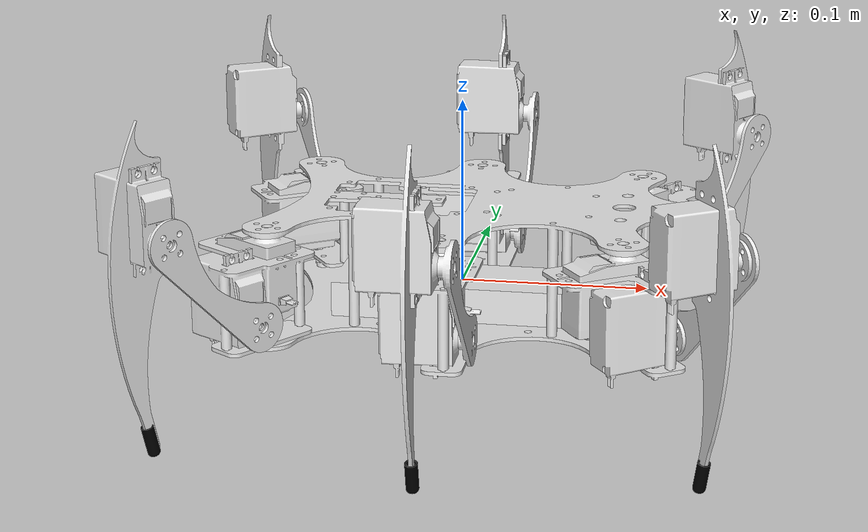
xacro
<?xml version="1.0"?>
<robot xmlns:xacro="http://www.ros.org/wiki/xacro" name="goliath">

  <xacro:property name="coxa_length" value="0.022" />
  <xacro:property name="femur_length" value="0.08" />
  <xacro:property name="tibia_length" value="0.115" />
  <xacro:property name="leg_base_angle" value="${55.6/180*pi}" />

  <xacro:property name="legs_joint_effort" value="6.0"/>
  <xacro:property name="legs_joint_velocity" value="0.524"/>

  <material name="alumunium">
    <color rgba="0.9 0.9 0.9 1"/>
  </material>

  <material name="rubber">
    <color rgba="0 0 0 1"/>
  </material>

 <!-- Body -->
  <link name="body_link">
    <visual>
      <geometry>
        <mesh filename="package://goliath_description/meshes/body.stl" scale= "0.001 0.001 0.001" />
      </geometry>
      <origin xyz="0.0 0.0 0.0448" rpy="0 0 ${-pi/2}"/>
      <material name="alumunium"/>
    </visual>
  </link>

<!-- Leg macro -->
  <xacro:macro name="leg" params="side location x y angle">

    <link name="${side}${location}_coxa_link">
      <visual>
        <geometry>
          <mesh filename="package://goliath_description/meshes/${side}_coxa.stl" scale= "0.001 0.001 0.001" />
        </geometry>
        <origin xyz="0.0 0.0 0.0433" rpy="0 0 0"/>
        <material name="alumunium"/>
      </visual>
    </link>

    <joint name="${side}${location}_coxa_joint" type="revolute">
      <parent link="body_link"/>
      <child link="${side}${location}_coxa_link"/>
      <origin xyz="${x} ${y} 0.00" rpy="0 0 ${angle}"/>
      <limit effort="${legs_joint_effort}" velocity="${legs_joint_velocity}" lower="-0.93" upper="0.93"/>
      <axis xyz="0 0 1"/>
    </joint>

    <link name="${side}${location}_femur_link">
      <visual>
        <geometry>
          <mesh filename="package://goliath_description/meshes/${side}_femur.stl" scale= "0.001 0.001 0.001" />
        </geometry>
        <origin xyz="0 0 0.0" rpy="0.0 0 0"/>
        <material name="alumunium"/>
      </visual>
    </link>

    <joint name="${side}${location}_femur_joint" type="revolute">
      <parent link="${side}${location}_coxa_link"/>
      <child link="${side}${location}_femur_link"/>
      <origin xyz="${coxa_length} 0.00 0.00" rpy="0 ${-pi/4} 0.0"/>
      <limit effort="${legs_joint_effort}" velocity="${legs_joint_velocity}" lower="-0.88" upper="2.27"/>
      <axis xyz="0 1 0"/>
    </joint>

    <link name="${side}${location}_tibia_link">
      <visual>
        <geometry>
           <mesh filename="package://goliath_description/meshes/${side}_tibia.stl" scale= "0.001 0.001 0.001" />
        </geometry>
        <origin xyz="0.0 0 0.0" rpy="0 0 0"/>
        <material name="alumunium"/>
      </visual>
    </link>

    <joint name="${side}${location}_tibia_joint" type="revolute">
      <parent link="${side}${location}_femur_link"/>
      <child link="${side}${location}_tibia_link"/>
      <origin xyz="${femur_length} 0.0 0.0" rpy="0 ${-pi/4} 0"/>
      <limit effort="${legs_joint_effort}" velocity="${legs_joint_velocity}" lower="-2.6" upper="0.44"/>
      <axis xyz="0 1 0"/>
    </joint>

    <link name="${side}${location}_tarsus_link">
      <visual>
        <geometry>
           <mesh filename="package://goliath_description/meshes/leg_end.stl" scale= "0.001 0.001 0.001" />
        </geometry>
        <origin xyz="0.0 0.0 0.0" rpy="0 ${0.25 - pi/2} 0"/>
        <material name="rubber"/>
      </visual>
    </link>

    <joint name="${side}${location}_tarsus_joint" type="fixed">
      <parent link="${side}${location}_tibia_link"/>
      <child link="${side}${location}_tarsus_link"/>
      <origin xyz="-${tibia_length} 0.0 0" rpy="0 ${pi/2} 0"/>
    </joint>

  </xacro:macro>

  <xacro:leg side="l" location="f" x="0.092"  y="0.063"   angle="${leg_base_angle}" />
  <xacro:leg side="l" location="m" x="0"      y="0.072"   angle="${pi/2}" />
  <xacro:leg side="l" location="r" x="-0.092" y="0.063"   angle="${pi - leg_base_angle}" />

  <xacro:leg side="r" location="f" x="0.092"  y="-0.063"  angle="${-leg_base_angle}" />
  <xacro:leg side="r" location="m" x="0"      y="-0.072"  angle="${-pi/2}" />
  <xacro:leg side="r" location="r" x="-0.092" y="-0.063"  angle="${-pi + leg_base_angle}" />

</robot>
